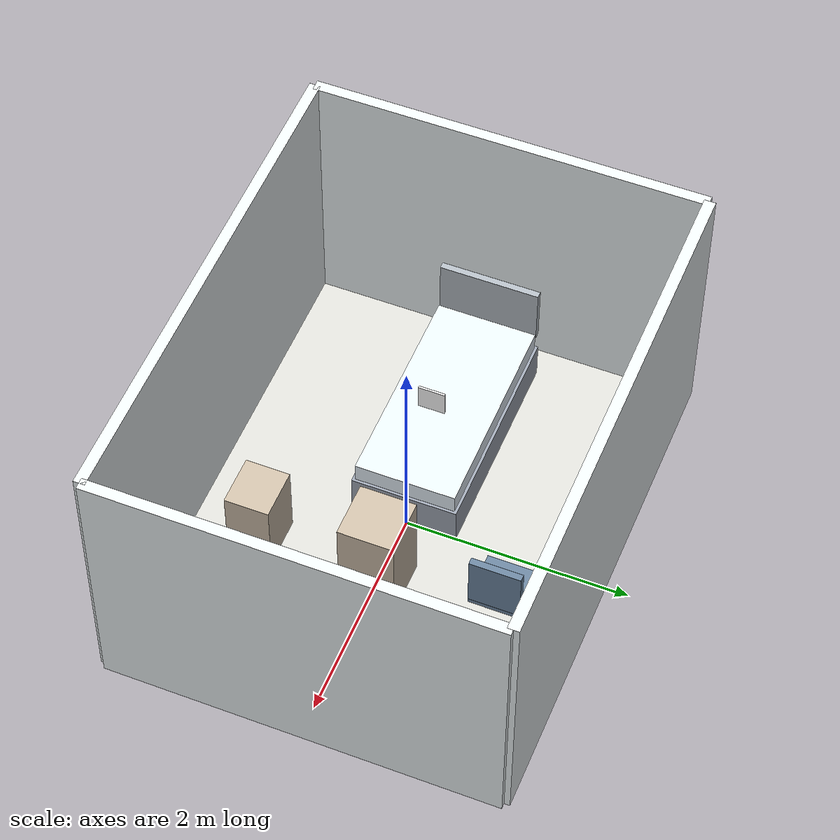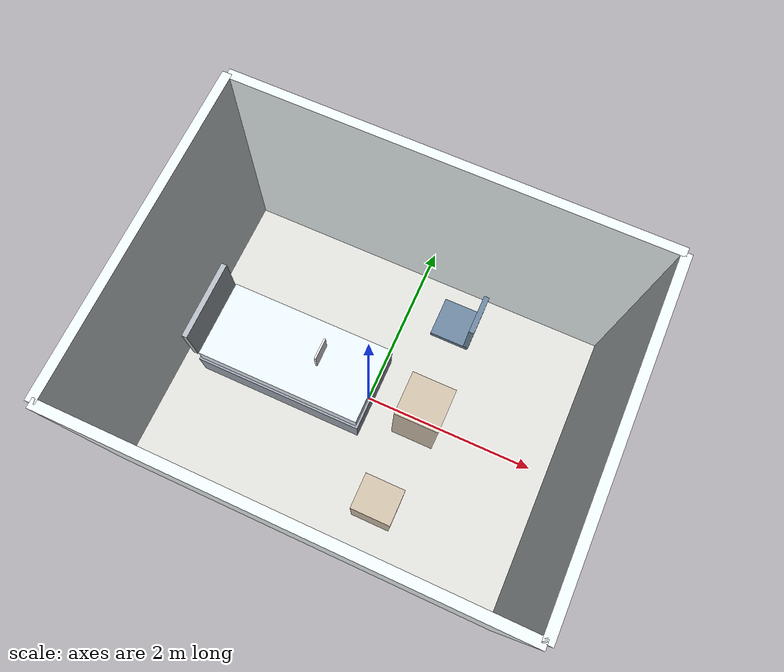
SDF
<?xml version="1.0" ?>
<sdf version="1.9">
  <world name="hospital_room">

    <physics name="1ms" type="ignored">
      <max_step_size>0.001</max_step_size>
      <real_time_factor>1.0</real_time_factor>
    </physics>

    <plugin filename="gz-sim-physics-system"
            name="gz::sim::systems::Physics"/>
    <plugin filename="gz-sim-user-commands-system"
            name="gz::sim::systems::UserCommands"/>
    <plugin filename="gz-sim-scene-broadcaster-system"
            name="gz::sim::systems::SceneBroadcaster"/>
    <plugin filename="gz-sim-sensors-system"
            name="gz::sim::systems::Sensors">
      <render_engine>ogre2</render_engine>
    </plugin>
    <plugin filename="gz-sim-imu-system"
            name="gz::sim::systems::Imu"/>

    <scene>
      <ambient>0.55 0.55 0.58 1</ambient>
      <background>0.85 0.87 0.90 1</background>
      <shadows>true</shadows>
    </scene>

    <!-- ============================================== iluminación (escenario E2) -->
    <light type="directional" name="sun">
      <cast_shadows>true</cast_shadows>
      <pose>0 0 6 0 0 0</pose>
      <diffuse>0.85 0.85 0.82 1</diffuse>
      <specular>0.2 0.2 0.2 1</specular>
      <direction>-0.3 0.2 -0.9</direction>
    </light>

    <light type="point" name="ceiling_1">
      <pose>-1.2 0 2.6 0 0 0</pose>
      <diffuse>0.9 0.9 0.85 1</diffuse>
      <attenuation><range>8</range><constant>0.4</constant><linear>0.1</linear></attenuation>
      <cast_shadows>false</cast_shadows>
    </light>
    <light type="point" name="ceiling_2">
      <pose>1.2 0 2.6 0 0 0</pose>
      <diffuse>0.9 0.9 0.85 1</diffuse>
      <attenuation><range>8</range><constant>0.4</constant><linear>0.1</linear></attenuation>
      <cast_shadows>false</cast_shadows>
    </light>

    <!-- ==================================================== suelo y paredes -->
    <model name="floor">
      <static>true</static>
      <link name="link">
        <collision name="c">
          <geometry><plane><normal>0 0 1</normal><size>4.5 3.5</size></plane></geometry>
        </collision>
        <visual name="v">
          <geometry><plane><normal>0 0 1</normal><size>4.5 3.5</size></plane></geometry>
          <material><ambient>0.80 0.80 0.78 1</ambient><diffuse>0.86 0.86 0.84 1</diffuse></material>
        </visual>
      </link>
    </model>

    <model name="walls">
      <static>true</static>
      <link name="link">
        <visual name="w_north">
          <pose>0 1.75 1.25 0 0 0</pose>
          <geometry><box><size>4.5 0.10 2.5</size></box></geometry>
          <material><ambient>0.88 0.91 0.93 1</ambient><diffuse>0.92 0.95 0.96 1</diffuse></material>
        </visual>
        <collision name="c_north">
          <pose>0 1.75 1.25 0 0 0</pose>
          <geometry><box><size>4.5 0.10 2.5</size></box></geometry>
        </collision>
        <visual name="w_south">
          <pose>0 -1.75 1.25 0 0 0</pose>
          <geometry><box><size>4.5 0.10 2.5</size></box></geometry>
          <material><ambient>0.88 0.91 0.93 1</ambient><diffuse>0.92 0.95 0.96 1</diffuse></material>
        </visual>
        <visual name="w_west">
          <pose>-2.25 0 1.25 0 0 0</pose>
          <geometry><box><size>0.10 3.5 2.5</size></box></geometry>
          <material><ambient>0.88 0.91 0.93 1</ambient><diffuse>0.92 0.95 0.96 1</diffuse></material>
        </visual>
        <visual name="w_east">
          <pose>2.25 0 1.25 0 0 0</pose>
          <geometry><box><size>0.10 3.5 2.5</size></box></geometry>
          <material><ambient>0.88 0.91 0.93 1</ambient><diffuse>0.92 0.95 0.96 1</diffuse></material>
        </visual>
      </link>
    </model>

    <!-- ==================================================== cama hospitalaria -->
    <model name="hospital_bed">
      <static>true</static>
      <pose>-0.90 0 0 0 0 0</pose>
      <link name="link">
        <visual name="mattress">
          <pose>0 0 0.55 0 0 0</pose>
          <geometry><box><size>1.90 0.90 0.18</size></box></geometry>
          <material><ambient>0.85 0.90 0.95 1</ambient><diffuse>0.90 0.94 0.98 1</diffuse></material>
        </visual>
        <collision name="c">
          <pose>0 0 0.55 0 0 0</pose>
          <geometry><box><size>1.90 0.90 0.18</size></box></geometry>
        </collision>
        <visual name="frame">
          <pose>0 0 0.28 0 0 0</pose>
          <geometry><box><size>1.95 0.95 0.36</size></box></geometry>
          <material><ambient>0.55 0.58 0.62 1</ambient><diffuse>0.62 0.65 0.70 1</diffuse></material>
        </visual>
        <visual name="headboard">
          <pose>-1.00 0 0.85 0 0 0</pose>
          <geometry><box><size>0.06 0.90 0.55</size></box></geometry>
          <material><ambient>0.60 0.63 0.66 1</ambient><diffuse>0.70 0.73 0.76 1</diffuse></material>
        </visual>
      </link>
    </model>

    <!-- ===================================== plano del paciente (textura facial) -->
    <model name="patient_face_plane">
      <static>true</static>
      <pose>-0.55 0 1.05 0 0 0</pose>
      <link name="link">
        <visual name="face">
          <!-- Cuadrado (la textura lo es) y con el lado fino en X, de modo que
               la cara texturizada queda enfrentada al robot, situado en +X. -->
          <geometry><box><size>0.02 0.24 0.24</size></box></geometry>
          <material>
            <ambient>0.85 0.85 0.85 1</ambient>
            <diffuse>1.0 1.0 1.0 1</diffuse>
            <specular>0.05 0.05 0.05 1</specular>
            <pbr>
              <metal>
                <albedo_map>materials/textures/patient_face.png</albedo_map>
                <metalness>0.0</metalness>
                <roughness>0.9</roughness>
              </metal>
            </pbr>
          </material>
        </visual>
      </link>
    </model>

    <!-- ======================================================= mobiliario -->
    <model name="bedside_table">
      <static>true</static>
      <pose>0.60 -1.10 0 0 0 0</pose>
      <link name="link">
        <visual name="v">
          <pose>0 0 0.35 0 0 0</pose>
          <geometry><box><size>0.45 0.40 0.70</size></box></geometry>
          <material><ambient>0.72 0.66 0.58 1</ambient><diffuse>0.80 0.74 0.66 1</diffuse></material>
        </visual>
        <collision name="c">
          <pose>0 0 0.35 0 0 0</pose>
          <geometry><box><size>0.45 0.40 0.70</size></box></geometry>
        </collision>
      </link>
    </model>

    <model name="companion_chair">
      <static>true</static>
      <pose>0.60 1.10 0 0 0 3.1416</pose>
      <link name="link">
        <visual name="seat">
          <pose>0 0 0.45 0 0 0</pose>
          <geometry><box><size>0.45 0.45 0.06</size></box></geometry>
          <material><ambient>0.35 0.45 0.55 1</ambient><diffuse>0.42 0.52 0.62 1</diffuse></material>
        </visual>
        <visual name="back">
          <pose>-0.20 0 0.72 0 0 0</pose>
          <geometry><box><size>0.06 0.45 0.50</size></box></geometry>
          <material><ambient>0.35 0.45 0.55 1</ambient><diffuse>0.42 0.52 0.62 1</diffuse></material>
        </visual>
      </link>
    </model>

    <!-- Mesa donde se apoya el robot, a 1,2 m del rostro del paciente -->
    <model name="robot_table">
      <static>true</static>
      <pose>0.65 0 0 0 0 0</pose>
      <link name="link">
        <visual name="v">
          <pose>0 0 0.45 0 0 0</pose>
          <geometry><box><size>0.50 0.50 0.90</size></box></geometry>
          <material><ambient>0.72 0.66 0.58 1</ambient><diffuse>0.80 0.74 0.66 1</diffuse></material>
        </visual>
        <collision name="c">
          <pose>0 0 0.45 0 0 0</pose>
          <geometry><box><size>0.50 0.50 0.90</size></box></geometry>
        </collision>
      </link>
    </model>

  </world>
</sdf>
